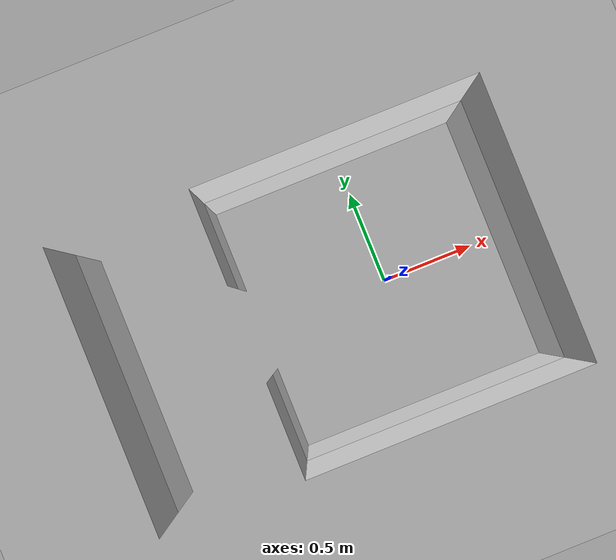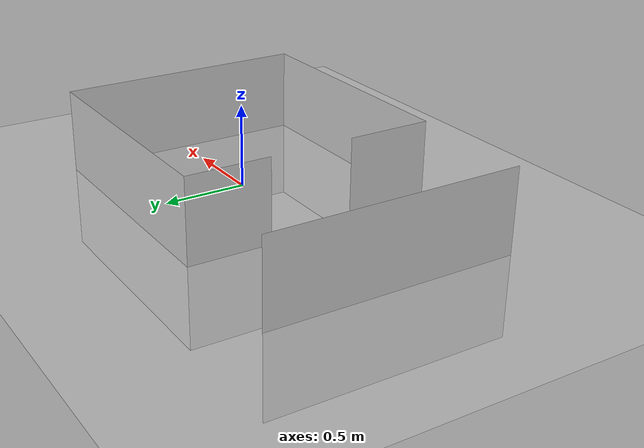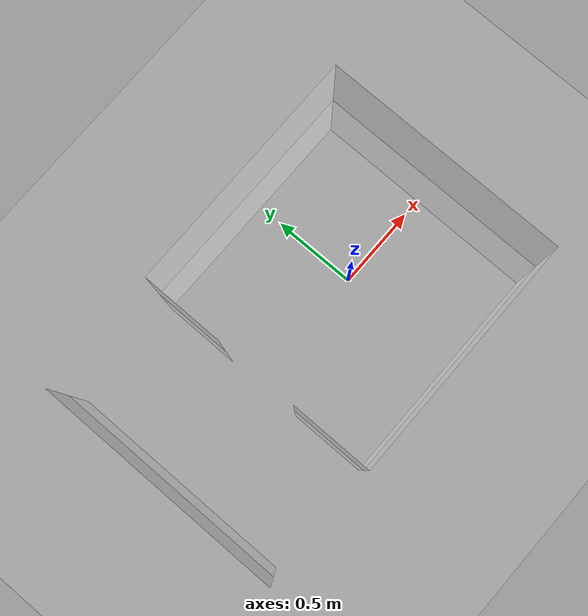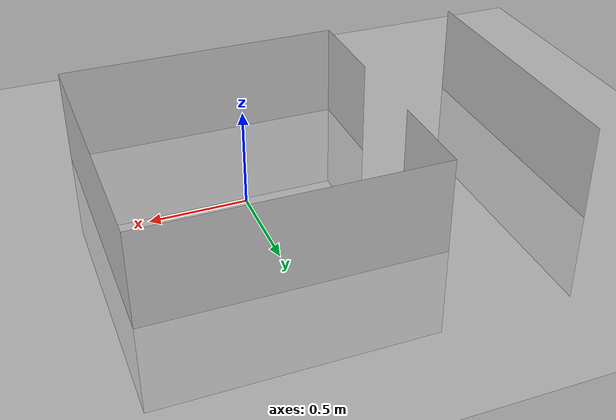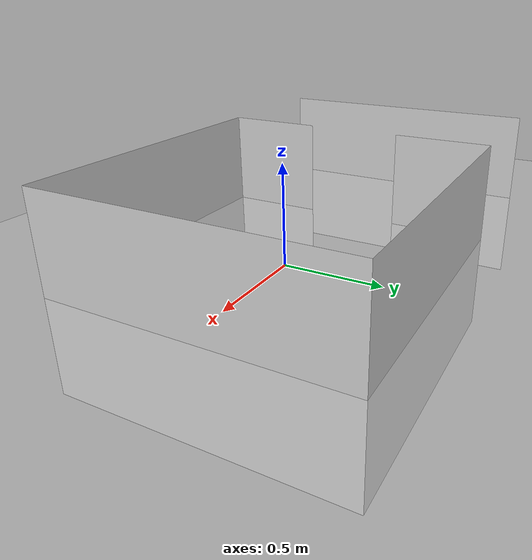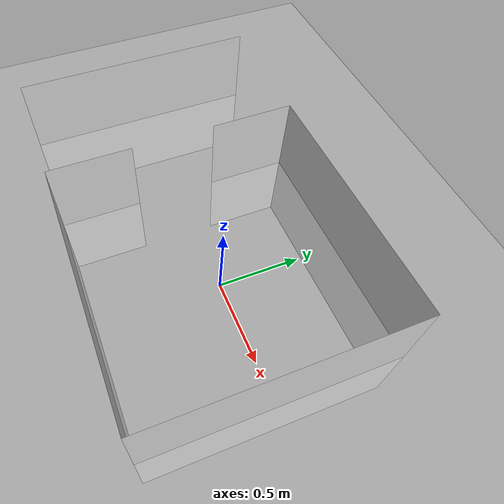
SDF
<?xml version="1.0" ?>
<sdf version="1.4">
  <world name="default">
    <!-- Set camera position -->
    <gui fullscreen='0'>
      <camera name='user_camera'>
        <pose>-1.23538 -0.174136 29.3674 -2.2e-05 1.5698 1.57213</pose>
        <view_controller>orbit</view_controller>
      </camera>
    </gui>
    <!-- A global light source -->
    <include>
      <uri>model://sun</uri>
    </include>
    <!-- A ground plane -->
    <include>
      <uri>model://ground_plane</uri>
    </include>
    <!-- Mobile Robotics and Navigation Exercise -->
    <include>
      <uri>model://small_room</uri>
    </include>
  </world>
</sdf>

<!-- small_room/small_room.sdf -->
<sdf version='1.4'>
  <model name='small_room'>
    <link name='Wall_right'>
      <collision name='Wall_right_Collision'>
        <geometry>
          <box>
            <size>1.5 0 1</size>
          </box>
        </geometry>
        <pose>0 0 0 0 0 0</pose>
      </collision>
      <visual name='Wall_right_Visual'>
        <pose>0 0 0 0 0 0</pose>
        <geometry>
          <box>
            <size>1.5 0 1</size>
          </box>
        </geometry>
        <material>
          <script>
            <uri>file://media/materials/scripts/gazebo.material</uri>
            <name>Gazebo/WhiteGlow</name>
          </script>
        </material>
      </visual>
      <velocity_decay>
        <linear>0</linear>
        <angular>0</angular>
      </velocity_decay>
      <pose>0 0.75 0 0 0 0</pose>
    </link>
    <link name='Wall_left'>
      <collision name='Wall_left_Collision'>
        <geometry>
          <box>
            <size>1.5 0 1</size>
          </box>
        </geometry>
        <pose>0 0 0 0 0 0</pose>
      </collision>
      <visual name='Wall_left_Visual'>
        <pose>0 0 0 0 0 0</pose>
        <geometry>
          <box>
            <size>1.5 0 1</size>
          </box>
        </geometry>
        <material>
          <script>
            <uri>file://media/materials/scripts/gazebo.material</uri>
            <name>Gazebo/WhiteGlow</name>
          </script>
        </material>
      </visual>
      <velocity_decay>
        <linear>0</linear>
        <angular>0</angular>
      </velocity_decay>
      <pose>0 -0.75 0 0 0 0</pose>
    </link>
    <link name='Wall_back'>
      <collision name='Wall_back_Collision'>
        <geometry>
          <box>
            <size>1.5 0 1</size>
          </box>
        </geometry>
        <pose>0 0 0 0 0 0</pose>
      </collision>
      <visual name='Wall_back_Visual'>
        <pose>0 0 0 0 0 0</pose>
        <geometry>
          <box>
            <size>1.5 0 1</size>
          </box>
        </geometry>
        <material>
          <script>
            <uri>file://media/materials/scripts/gazebo.material</uri>
            <name>Gazebo/WhiteGlow</name>
          </script>
        </material>
      </visual>
      <velocity_decay>
        <linear>0</linear>
        <angular>0</angular>
      </velocity_decay>
      <pose>0.75 0 0 0 0 1.57079632679</pose>
    </link>
    <link name='Wall_frontright'>
      <collision name='Wall_frontright_Collision'>
        <geometry>
          <box>
            <size>0.5 0 1</size>
          </box>
        </geometry>
        <pose>0 0 0 0 0 0</pose>
      </collision>
      <visual name='Wall_frontright_Visual'>
        <pose>0 0 0 0 0 0</pose>
        <geometry>
          <box>
            <size>0.5 0 1</size>
          </box>
        </geometry>
        <material>
          <script>
            <uri>file://media/materials/scripts/gazebo.material</uri>
            <name>Gazebo/WhiteGlow</name>
          </script>
        </material>
      </visual>
      <velocity_decay>
        <linear>0</linear>
        <angular>0</angular>
      </velocity_decay>
      <pose>-0.75 0.5 0 0 0 1.57079632679</pose>
    </link>
    <link name='Wall_frontleft'>
      <collision name='Wall_frontleft_Collision'>
        <geometry>
          <box>
            <size>0.5 0 1</size>
          </box>
        </geometry>
        <pose>0 0 0 0 0 0</pose>
      </collision>
      <visual name='Wall_frontleft_Visual'>
        <pose>0 0 0 0 0 0</pose>
        <geometry>
          <box>
            <size>0.5 0 1</size>
          </box>
        </geometry>
        <material>
          <script>
            <uri>file://media/materials/scripts/gazebo.material</uri>
            <name>Gazebo/WhiteGlow</name>
          </script>
        </material>
      </visual>
      <velocity_decay>
        <linear>0</linear>
        <angular>0</angular>
      </velocity_decay>
      <pose>-0.75 -0.5 0 0 0 1.57079632679</pose>
    </link>
        <link name='Wall_outside'>
      <collision name='Wall_outside_Collision'>
        <geometry>
          <box>
            <size>1.5 0 1</size>
          </box>
        </geometry>
        <pose>0 0 0 0 0 0</pose>
      </collision>
      <visual name='Wall_outside_Visual'>
        <pose>0 0 0 0 0 0</pose>
        <geometry>
          <box>
            <size>1.5 0 1</size>
          </box>
        </geometry>
        <material>
          <script>
            <uri>file://media/materials/scripts/gazebo.material</uri>
            <name>Gazebo/WhiteGlow</name>
          </script>
        </material>
      </visual>
      <velocity_decay>
        <linear>0</linear>
        <angular>0</angular>
      </velocity_decay>
      <pose>-1.5 0 0 0 0 1.57079632679</pose>
    </link>
    <static>1</static>
  </model>
</sdf>
